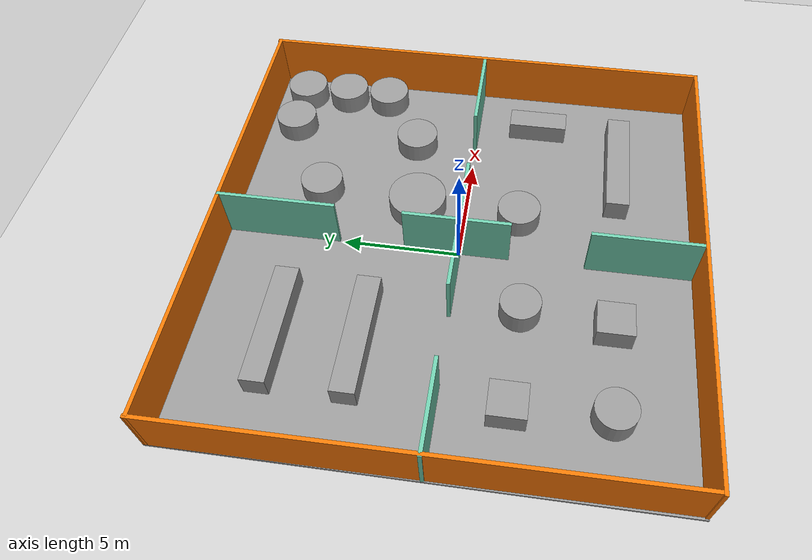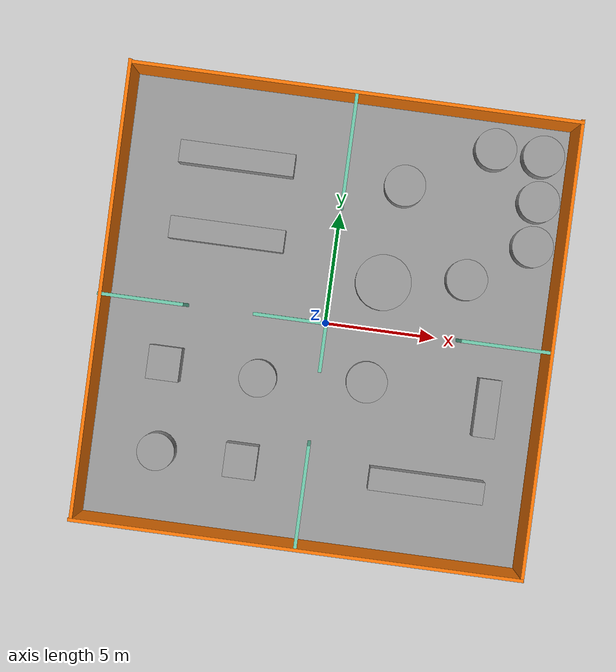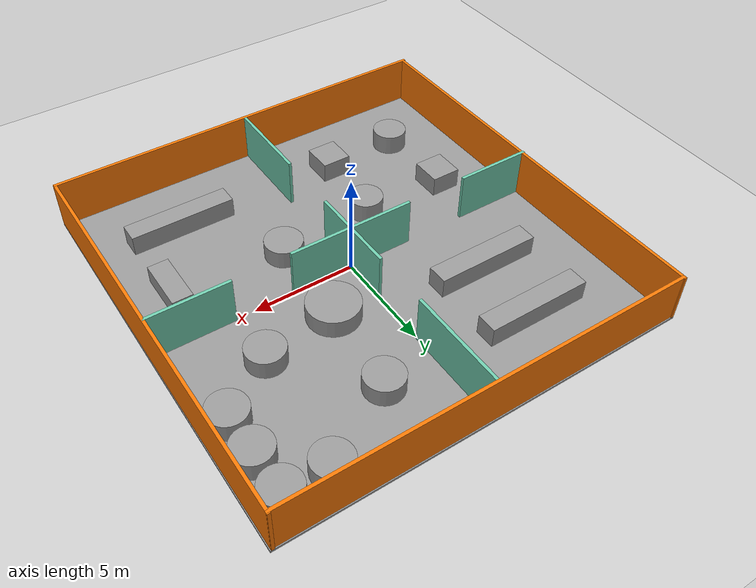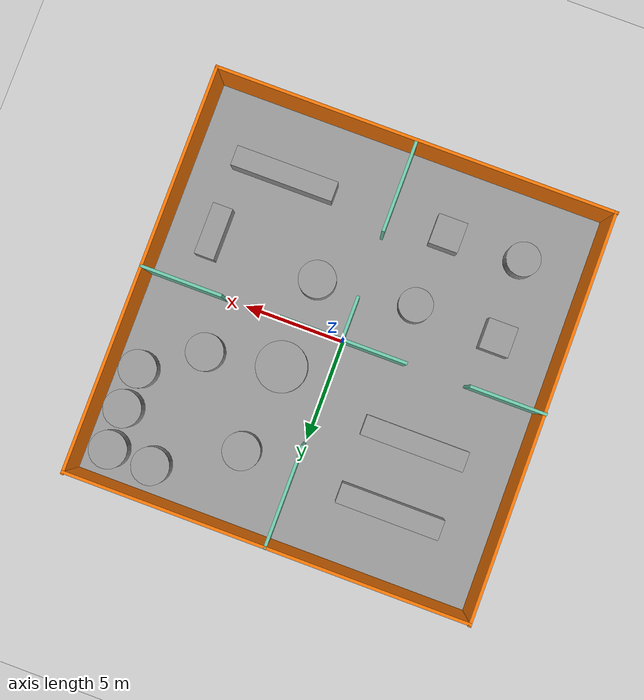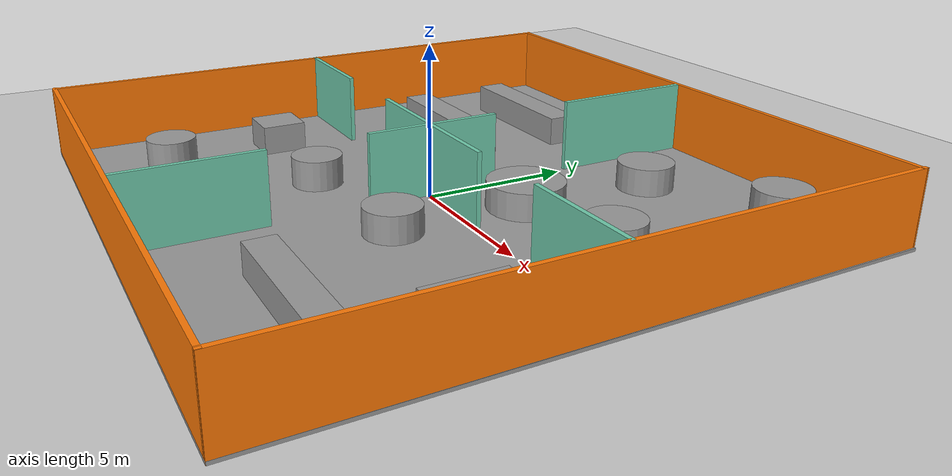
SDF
<sdf version="1.7">
 <world name="default">
  <plugin name="gazebo_ros_state" filename="libgazebo_ros_state.so">
   <ros><namespace>/gazebo</namespace></ros>
   <update_rate>20</update_rate>
  </plugin>
  <light name="sun" type="directional">
   <pose>0 0 10 0 -0 0</pose>
   <diffuse>0.8 0.8 0.8 1</diffuse>
   <specular>0.2 0.2 0.2 1</specular>
   <attenuation>
    <range>1000</range>
    <constant>0.9</constant>
    <linear>0.01</linear>
    <quadratic>0.001</quadratic>
   </attenuation>
   <direction>-0.5 0.1 -0.9</direction>
   <spot><inner_angle>0</inner_angle><outer_angle>0</outer_angle><falloff>0</falloff></spot>
  </light>
  <model name="ground_plane">
   <static>1</static>
   <link name="link">
    <collision name="collision">
     <geometry><plane><normal>0 0 1</normal><size>100 100</size></plane></geometry>
     <surface><friction><ode><mu>100</mu><mu2>50</mu2></ode></friction></surface>
    </collision>
    <visual name="visual">
     <cast_shadows>0</cast_shadows>
     <geometry><plane><normal>0 0 1</normal><size>100 100</size></plane></geometry>
     <material>
      <script><uri>file://media/materials/scripts/gazebo.material</uri><name>Gazebo/Grey</name></script>
     </material>
    </visual>
   </link>
  </model>
  <gravity>0 0 -9.8</gravity>
  <magnetic_field>6e-06 2.3e-05 -4.2e-05</magnetic_field>
  <atmosphere type="adiabatic"/>
  <physics type="ode">
   <max_step_size>0.001</max_step_size>
   <real_time_factor>1</real_time_factor>
   <real_time_update_rate>1000</real_time_update_rate>
  </physics>
  <scene><ambient>0.4 0.4 0.4 1</ambient><background>0.7 0.7 0.7 1</background><shadows>1</shadows></scene>
  <audio><device>default</device></audio>
  <spherical_coordinates>
   <surface_model>EARTH_WGS84</surface_model>
   <latitude_deg>0</latitude_deg>
   <longitude_deg>0</longitude_deg>
   <elevation>0</elevation>
   <heading_deg>0</heading_deg>
  </spherical_coordinates>
  <model name="unit_box">
   <pose>-4.87008 6.75774 0.599997 -5e-06 -0 9.3e-05</pose>
   <link name="link">
    <inertial>
     <mass>1</mass>
     <inertia>
      <ixx>0.166667</ixx>
      <ixy>0</ixy>
      <ixz>0</ixz>
      <iyy>0.166667</iyy>
      <iyz>0</iyz>
      <izz>0.166667</izz>
     </inertia>
    </inertial>
    <collision name="collision"><geometry><box><size>5.1529 1 1</size></box></geometry></collision>
    <visual name="visual">
     <geometry><box><size>5.1529 1 1</size></box></geometry>
     <material>
      <script><name>Gazebo/Grey</name><uri>file://media/materials/scripts/gazebo.material</uri></script>
     </material>
    </visual>
   </link>
   <static>1</static>
  </model>
  <model name="unit_box_clone">
   <pose>-4.86856 3.35458 0.6 -2e-06 0 9.4e-05</pose>
   <link name="link">
    <inertial>
     <mass>1</mass>
     <inertia>
      <ixx>0.166667</ixx>
      <ixy>0</ixy>
      <ixz>0</ixz>
      <iyy>0.166667</iyy>
      <iyz>0</iyz>
      <izz>0.166667</izz>
     </inertia>
    </inertial>
    <collision name="collision"><geometry><box><size>5.1529 1 1</size></box></geometry></collision>
    <visual name="visual">
     <geometry><box><size>5.1529 1 1</size></box></geometry>
     <material>
      <script><name>Gazebo/Grey</name><uri>file://media/materials/scripts/gazebo.material</uri></script>
     </material>
    </visual>
   </link>
   <static>1</static>
  </model>
  <model name="unit_cylinder">
   <pose>-2.65595 -2.8222 0.599999 2e-06 -0 -9e-06</pose>
   <link name="link">
    <inertial>
     <mass>1</mass>
     <inertia><ixx>0.145833</ixx><ixy>0</ixy><ixz>0</ixz><iyy>0.145833</iyy><iyz>0</iyz><izz>0.125</izz></inertia>
    </inertial>
    <collision name="collision">
     <geometry><cylinder><radius>0.843925</radius><length>1</length></cylinder></geometry>
    </collision>
    <visual name="visual">
     <geometry><cylinder><radius>0.843925</radius><length>1</length></cylinder></geometry>
     <material>
      <script><name>Gazebo/Grey</name><uri>file://media/materials/scripts/gazebo.material</uri></script>
     </material>
    </visual>
   </link>
   <static>1</static>
  </model>
  <model name="unit_cylinder_clone">
   <pose>-6.71343 -6.65789 0.6 0 -0 9e-06</pose>
   <link name="link">
    <inertial>
     <mass>1</mass>
     <inertia><ixx>0.145833</ixx><ixy>0</ixy><ixz>0</ixz><iyy>0.145833</iyy><iyz>0</iyz><izz>0.125</izz></inertia>
    </inertial>
    <collision name="collision">
     <geometry><cylinder><radius>0.843927</radius><length>1</length></cylinder></geometry>
    </collision>
    <visual name="visual">
     <geometry><cylinder><radius>0.843927</radius><length>1</length></cylinder></geometry>
     <material>
      <script><name>Gazebo/Grey</name><uri>file://media/materials/scripts/gazebo.material</uri></script>
     </material>
    </visual>
   </link>
   <static>1</static>
  </model>
  <model name="unit_box_0">
   <pose>-6.87616 -2.71698 0.599993 -9e-06 -0 3e-06</pose>
   <link name="link">
    <inertial>
     <mass>1</mass>
     <inertia>
      <ixx>0.166667</ixx>
      <ixy>0</ixy>
      <ixz>0</ixz>
      <iyy>0.166667</iyy>
      <iyz>0</iyz>
      <izz>0.166667</izz>
     </inertia>
    </inertial>
    <collision name="collision"><geometry><box><size>1.45937 1.51944 1</size></box></geometry></collision>
    <visual name="visual">
     <geometry><box><size>1.45937 1.51944 1</size></box></geometry>
     <material>
      <script><name>Gazebo/Grey</name><uri>file://media/materials/scripts/gazebo.material</uri></script>
     </material>
    </visual>
   </link>
   <static>1</static>
  </model>
  <model name="unit_box_0_clone">
   <pose>-2.92496 -6.5854 0.599993 -9e-06 -0 3e-06</pose>
   <link name="link">
    <inertial>
     <mass>1</mass>
     <inertia>
      <ixx>0.166667</ixx>
      <ixy>0</ixy>
      <ixz>0</ixz>
      <iyy>0.166667</iyy>
      <iyz>0</iyz>
      <izz>0.166667</izz>
     </inertia>
    </inertial>
    <collision name="collision"><geometry><box><size>1.45937 1.51944 1</size></box></geometry></collision>
    <visual name="visual">
     <geometry><box><size>1.45937 1.51944 1</size></box></geometry>
     <material>
      <script><name>Gazebo/Grey</name><uri>file://media/materials/scripts/gazebo.material</uri></script>
     </material>
    </visual>
   </link>
   <static>1</static>
  </model>
  <model name="four_rooms">
   <static>1</static>
   <link name="Floor_0">
    <visual name="Floor_0_Visual">
     <pose>0 0 0.05 0 -0 0</pose>
     <geometry><box><size>19.9831 20.2277 0.1</size></box></geometry>
     <material>
      <script><uri>file://media/materials/scripts/gazebo.material</uri><name>Gazebo/Grey</name></script>
      <ambient>1 1 1 1</ambient>
      <shader type="pixel"/>
     </material>
     <meta><layer>0</layer></meta>
    </visual>
    <collision name="Floor_0_Collision">
     <pose>0 0 0.05 0 -0 0</pose>
     <geometry><box><size>19.9831 20.2277 0.1</size></box></geometry>
     <surface>
      <friction>
       <ode><mu>1</mu><mu2>1</mu2><fdir1>0 0 0</fdir1><slip1>0</slip1><slip2>0</slip2></ode>
       <torsional>
        <coefficient>1</coefficient>
        <patch_radius>0</patch_radius>
        <surface_radius>0</surface_radius>
        <use_patch_radius>1</use_patch_radius>
        <ode><slip>0</slip></ode>
       </torsional>
      </friction>
      <bounce><restitution_coefficient>0</restitution_coefficient><threshold>1e+06</threshold></bounce>
      <contact>
       <collide_without_contact>0</collide_without_contact>
       <collide_without_contact_bitmask>1</collide_without_contact_bitmask>
       <collide_bitmask>1</collide_bitmask>
       <ode>
        <soft_cfm>0</soft_cfm>
        <soft_erp>0.2</soft_erp>
        <kp>1e+13</kp>
        <kd>1</kd>
        <max_vel>0.01</max_vel>
        <min_depth>0</min_depth>
       </ode>
       <bullet>
        <split_impulse>1</split_impulse>
        <split_impulse_penetration_threshold>-0.01</split_impulse_penetration_threshold>
        <soft_cfm>0</soft_cfm>
        <soft_erp>0.2</soft_erp>
        <kp>1e+13</kp>
        <kd>1</kd>
       </bullet>
      </contact>
     </surface>
    </collision>
   </link>
   <link name="Wall_13">
    <pose>0.014659 -10.0385 0 0 -0 3.14159</pose>
    <visual name="Wall_13_Visual">
     <pose>0 0 1.25 0 -0 0</pose>
     <geometry><box><size>19.9187 0.15 2.5</size></box></geometry>
     <material>
      <script><uri>file://media/materials/scripts/gazebo.material</uri><name>Gazebo/Grey</name></script>
      <ambient>0.996078 0.47451 0.0196078 1</ambient>
      <shader type="pixel"/>
     </material>
     <meta><layer>0</layer></meta>
    </visual>
    <collision name="Wall_13_Collision">
     <pose>0 0 1.25 0 -0 0</pose>
     <geometry><box><size>19.9187 0.15 2.5</size></box></geometry>
     <surface>
      <friction>
       <ode><mu>1</mu><mu2>1</mu2><fdir1>0 0 0</fdir1><slip1>0</slip1><slip2>0</slip2></ode>
       <torsional>
        <coefficient>1</coefficient>
        <patch_radius>0</patch_radius>
        <surface_radius>0</surface_radius>
        <use_patch_radius>1</use_patch_radius>
        <ode><slip>0</slip></ode>
       </torsional>
      </friction>
      <bounce><restitution_coefficient>0</restitution_coefficient><threshold>1e+06</threshold></bounce>
      <contact>
       <collide_without_contact>0</collide_without_contact>
       <collide_without_contact_bitmask>1</collide_without_contact_bitmask>
       <collide_bitmask>1</collide_bitmask>
       <ode>
        <soft_cfm>0</soft_cfm>
        <soft_erp>0.2</soft_erp>
        <kp>1e+13</kp>
        <kd>1</kd>
        <max_vel>0.01</max_vel>
        <min_depth>0</min_depth>
       </ode>
       <bullet>
        <split_impulse>1</split_impulse>
        <split_impulse_penetration_threshold>-0.01</split_impulse_penetration_threshold>
        <soft_cfm>0</soft_cfm>
        <soft_erp>0.2</soft_erp>
        <kp>1e+13</kp>
        <kd>1</kd>
       </bullet>
      </contact>
     </surface>
    </collision>
   </link>
   <link name="Wall_14">
    <pose>-9.8697 0 0 0 -0 1.57543</pose>
    <visual name="Wall_14_Visual">
     <pose>0 0 1.25 0 -0 0</pose>
     <geometry><box><size>20.2272 0.15 2.5</size></box></geometry>
     <material>
      <script><uri>file://media/materials/scripts/gazebo.material</uri><name>Gazebo/Grey</name></script>
      <ambient>0.996078 0.47451 0.0196078 1</ambient>
      <shader type="pixel"/>
     </material>
     <meta><layer>0</layer></meta>
    </visual>
    <collision name="Wall_14_Collision">
     <pose>0 0 1.25 0 -0 0</pose>
     <geometry><box><size>20.2272 0.15 2.5</size></box></geometry>
     <surface>
      <friction>
       <ode><mu>1</mu><mu2>1</mu2><fdir1>0 0 0</fdir1><slip1>0</slip1><slip2>0</slip2></ode>
       <torsional>
        <coefficient>1</coefficient>
        <patch_radius>0</patch_radius>
        <surface_radius>0</surface_radius>
        <use_patch_radius>1</use_patch_radius>
        <ode><slip>0</slip></ode>
       </torsional>
      </friction>
      <bounce><restitution_coefficient>0</restitution_coefficient><threshold>1e+06</threshold></bounce>
      <contact>
       <collide_without_contact>0</collide_without_contact>
       <collide_without_contact_bitmask>1</collide_without_contact_bitmask>
       <collide_bitmask>1</collide_bitmask>
       <ode>
        <soft_cfm>0</soft_cfm>
        <soft_erp>0.2</soft_erp>
        <kp>1e+13</kp>
        <kd>1</kd>
        <max_vel>0.01</max_vel>
        <min_depth>0</min_depth>
       </ode>
       <bullet>
        <split_impulse>1</split_impulse>
        <split_impulse_penetration_threshold>-0.01</split_impulse_penetration_threshold>
        <soft_cfm>0</soft_cfm>
        <soft_erp>0.2</soft_erp>
        <kp>1e+13</kp>
        <kd>1</kd>
       </bullet>
      </contact>
     </surface>
    </collision>
   </link>
   <link name="Wall_15">
    <pose>-0.023175 9.99198 0 0 -0 0</pose>
    <visual name="Wall_15_Visual">
     <pose>0 0 1.25 0 -0 0</pose>
     <geometry><box><size>19.9361 0.15 2.5</size></box></geometry>
     <material>
      <script><uri>file://media/materials/scripts/gazebo.material</uri><name>Gazebo/Grey</name></script>
      <ambient>0.996078 0.47451 0.0196078 1</ambient>
      <shader type="pixel"/>
     </material>
     <meta><layer>0</layer></meta>
    </visual>
    <collision name="Wall_15_Collision">
     <pose>0 0 1.25 0 -0 0</pose>
     <geometry><box><size>19.9361 0.15 2.5</size></box></geometry>
     <surface>
      <friction>
       <ode><mu>1</mu><mu2>1</mu2><fdir1>0 0 0</fdir1><slip1>0</slip1><slip2>0</slip2></ode>
       <torsional>
        <coefficient>1</coefficient>
        <patch_radius>0</patch_radius>
        <surface_radius>0</surface_radius>
        <use_patch_radius>1</use_patch_radius>
        <ode><slip>0</slip></ode>
       </torsional>
      </friction>
      <bounce><restitution_coefficient>0</restitution_coefficient><threshold>1e+06</threshold></bounce>
      <contact>
       <collide_without_contact>0</collide_without_contact>
       <collide_without_contact_bitmask>1</collide_without_contact_bitmask>
       <collide_bitmask>1</collide_bitmask>
       <ode>
        <soft_cfm>0</soft_cfm>
        <soft_erp>0.2</soft_erp>
        <kp>1e+13</kp>
        <kd>1</kd>
        <max_vel>0.01</max_vel>
        <min_depth>0</min_depth>
       </ode>
       <bullet>
        <split_impulse>1</split_impulse>
        <split_impulse_penetration_threshold>-0.01</split_impulse_penetration_threshold>
        <soft_cfm>0</soft_cfm>
        <soft_erp>0.2</soft_erp>
        <kp>1e+13</kp>
        <kd>1</kd>
       </bullet>
      </contact>
     </surface>
    </collision>
   </link>
   <link name="Wall_16">
    <pose>9.89314 0 0 0 0 -1.56848</pose>
    <visual name="Wall_16_Visual">
     <pose>0 0 1.25 0 -0 0</pose>
     <geometry><box><size>20.2271 0.15 2.5</size></box></geometry>
     <material>
      <script><uri>file://media/materials/scripts/gazebo.material</uri><name>Gazebo/Grey</name></script>
      <ambient>0.996078 0.47451 0.0196078 1</ambient>
      <shader type="pixel"/>
     </material>
     <meta><layer>0</layer></meta>
    </visual>
    <collision name="Wall_16_Collision">
     <pose>0 0 1.25 0 -0 0</pose>
     <geometry><box><size>20.2271 0.15 2.5</size></box></geometry>
     <surface>
      <friction>
       <ode><mu>1</mu><mu2>1</mu2><fdir1>0 0 0</fdir1><slip1>0</slip1><slip2>0</slip2></ode>
       <torsional>
        <coefficient>1</coefficient>
        <patch_radius>0</patch_radius>
        <surface_radius>0</surface_radius>
        <use_patch_radius>1</use_patch_radius>
        <ode><slip>0</slip></ode>
       </torsional>
      </friction>
      <bounce><restitution_coefficient>0</restitution_coefficient><threshold>1e+06</threshold></bounce>
      <contact>
       <collide_without_contact>0</collide_without_contact>
       <collide_without_contact_bitmask>1</collide_without_contact_bitmask>
       <collide_bitmask>1</collide_bitmask>
       <ode>
        <soft_cfm>0</soft_cfm>
        <soft_erp>0.2</soft_erp>
        <kp>1e+13</kp>
        <kd>1</kd>
        <max_vel>0.01</max_vel>
        <min_depth>0</min_depth>
       </ode>
       <bullet>
        <split_impulse>1</split_impulse>
        <split_impulse_penetration_threshold>-0.01</split_impulse_penetration_threshold>
        <soft_cfm>0</soft_cfm>
        <soft_erp>0.2</soft_erp>
        <kp>1e+13</kp>
        <kd>1</kd>
       </bullet>
      </contact>
     </surface>
    </collision>
   </link>
   <link name="Wall_17">
    <pose>-0.020792 -7.72221 0 0 -0 1.5708</pose>
    <visual name="Wall_17_Visual">
     <pose>0 0 1.25 0 -0 0</pose>
     <geometry><box><size>4.5 0.15 2.5</size></box></geometry>
     <material>
      <script><uri>file://media/materials/scripts/gazebo.material</uri><name>Gazebo/Grey</name></script>
      <ambient>0.435294 0.796078 0.67451 1</ambient>
      <shader type="pixel"/>
     </material>
     <meta><layer>0</layer></meta>
    </visual>
    <collision name="Wall_17_Collision">
     <pose>0 0 1.25 0 -0 0</pose>
     <geometry><box><size>4.5 0.15 2.5</size></box></geometry>
     <surface>
      <friction>
       <ode><mu>1</mu><mu2>1</mu2><fdir1>0 0 0</fdir1><slip1>0</slip1><slip2>0</slip2></ode>
       <torsional>
        <coefficient>1</coefficient>
        <patch_radius>0</patch_radius>
        <surface_radius>0</surface_radius>
        <use_patch_radius>1</use_patch_radius>
        <ode><slip>0</slip></ode>
       </torsional>
      </friction>
      <bounce><restitution_coefficient>0</restitution_coefficient><threshold>1e+06</threshold></bounce>
      <contact>
       <collide_without_contact>0</collide_without_contact>
       <collide_without_contact_bitmask>1</collide_without_contact_bitmask>
       <collide_bitmask>1</collide_bitmask>
       <ode>
        <soft_cfm>0</soft_cfm>
        <soft_erp>0.2</soft_erp>
        <kp>1e+13</kp>
        <kd>1</kd>
        <max_vel>0.01</max_vel>
        <min_depth>0</min_depth>
       </ode>
       <bullet>
        <split_impulse>1</split_impulse>
        <split_impulse_penetration_threshold>-0.01</split_impulse_penetration_threshold>
        <soft_cfm>0</soft_cfm>
        <soft_erp>0.2</soft_erp>
        <kp>1e+13</kp>
        <kd>1</kd>
       </bullet>
      </contact>
     </surface>
    </collision>
   </link>
   <link name="Wall_42">
    <pose>0.014279 -0.015042 0 0 -0 1.5708</pose>
    <visual name="Wall_42_Visual">
     <pose>0 0 1.25 0 -0 0</pose>
     <geometry><box><size>4.5 0.15 2.5</size></box></geometry>
     <material>
      <script><uri>file://media/materials/scripts/gazebo.material</uri><name>Gazebo/Grey</name></script>
      <ambient>0.435294 0.796078 0.67451 1</ambient>
      <shader type="pixel"/>
     </material>
     <meta><layer>0</layer></meta>
    </visual>
    <collision name="Wall_42_Collision">
     <pose>0 0 1.25 0 -0 0</pose>
     <geometry><box><size>4.5 0.15 2.5</size></box></geometry>
     <surface>
      <friction>
       <ode><mu>1</mu><mu2>1</mu2><fdir1>0 0 0</fdir1><slip1>0</slip1><slip2>0</slip2></ode>
       <torsional>
        <coefficient>1</coefficient>
        <patch_radius>0</patch_radius>
        <surface_radius>0</surface_radius>
        <use_patch_radius>1</use_patch_radius>
        <ode><slip>0</slip></ode>
       </torsional>
      </friction>
      <bounce><restitution_coefficient>0</restitution_coefficient><threshold>1e+06</threshold></bounce>
      <contact>
       <collide_without_contact>0</collide_without_contact>
       <collide_without_contact_bitmask>1</collide_without_contact_bitmask>
       <collide_bitmask>1</collide_bitmask>
       <ode>
        <soft_cfm>0</soft_cfm>
        <soft_erp>0.2</soft_erp>
        <kp>1e+13</kp>
        <kd>1</kd>
        <max_vel>0.01</max_vel>
        <min_depth>0</min_depth>
       </ode>
       <bullet>
        <split_impulse>1</split_impulse>
        <split_impulse_penetration_threshold>-0.01</split_impulse_penetration_threshold>
        <soft_cfm>0</soft_cfm>
        <soft_erp>0.2</soft_erp>
        <kp>1e+13</kp>
        <kd>1</kd>
       </bullet>
      </contact>
     </surface>
    </collision>
   </link>
   <link name="Wall_44">
    <pose>-0.052794 -0.127916 0 0 -0 0</pose>
    <visual name="Wall_44_Visual">
     <pose>0 0 1.25 0 -0 0</pose>
     <geometry><box><size>6.25 0.15 2.5</size></box></geometry>
     <material>
      <script><uri>file://media/materials/scripts/gazebo.material</uri><name>Gazebo/Grey</name></script>
      <ambient>0.435294 0.796078 0.67451 1</ambient>
      <shader type="pixel"/>
     </material>
     <meta><layer>0</layer></meta>
    </visual>
    <collision name="Wall_44_Collision">
     <pose>0 0 1.25 0 -0 0</pose>
     <geometry><box><size>6.25 0.15 2.5</size></box></geometry>
     <surface>
      <friction>
       <ode><mu>1</mu><mu2>1</mu2><fdir1>0 0 0</fdir1><slip1>0</slip1><slip2>0</slip2></ode>
       <torsional>
        <coefficient>1</coefficient>
        <patch_radius>0</patch_radius>
        <surface_radius>0</surface_radius>
        <use_patch_radius>1</use_patch_radius>
        <ode><slip>0</slip></ode>
       </torsional>
      </friction>
      <bounce><restitution_coefficient>0</restitution_coefficient><threshold>1e+06</threshold></bounce>
      <contact>
       <collide_without_contact>0</collide_without_contact>
       <collide_without_contact_bitmask>1</collide_without_contact_bitmask>
       <collide_bitmask>1</collide_bitmask>
       <ode>
        <soft_cfm>0</soft_cfm>
        <soft_erp>0.2</soft_erp>
        <kp>1e+13</kp>
        <kd>1</kd>
        <max_vel>0.01</max_vel>
        <min_depth>0</min_depth>
       </ode>
       <bullet>
        <split_impulse>1</split_impulse>
        <split_impulse_penetration_threshold>-0.01</split_impulse_penetration_threshold>
        <soft_cfm>0</soft_cfm>
        <soft_erp>0.2</soft_erp>
        <kp>1e+13</kp>
        <kd>1</kd>
       </bullet>
      </contact>
     </surface>
    </collision>
   </link>
   <link name="Wall_46">
    <pose>0.015303 7.5426 0 0 0 -1.5708</pose>
    <visual name="Wall_46_Visual">
     <pose>0 0 1.25 0 -0 0</pose>
     <geometry><box><size>5 0.15 2.5</size></box></geometry>
     <material>
      <script><uri>file://media/materials/scripts/gazebo.material</uri><name>Gazebo/Grey</name></script>
      <ambient>0.435294 0.796078 0.67451 1</ambient>
      <shader type="pixel"/>
     </material>
     <meta><layer>0</layer></meta>
    </visual>
    <collision name="Wall_46_Collision">
     <pose>0 0 1.25 0 -0 0</pose>
     <geometry><box><size>5 0.15 2.5</size></box></geometry>
     <surface>
      <friction>
       <ode><mu>1</mu><mu2>1</mu2><fdir1>0 0 0</fdir1><slip1>0</slip1><slip2>0</slip2></ode>
       <torsional>
        <coefficient>1</coefficient>
        <patch_radius>0</patch_radius>
        <surface_radius>0</surface_radius>
        <use_patch_radius>1</use_patch_radius>
        <ode><slip>0</slip></ode>
       </torsional>
      </friction>
      <bounce><restitution_coefficient>0</restitution_coefficient><threshold>1e+06</threshold></bounce>
      <contact>
       <collide_without_contact>0</collide_without_contact>
       <collide_without_contact_bitmask>1</collide_without_contact_bitmask>
       <collide_bitmask>1</collide_bitmask>
       <ode>
        <soft_cfm>0</soft_cfm>
        <soft_erp>0.2</soft_erp>
        <kp>1e+13</kp>
        <kd>1</kd>
        <max_vel>0.01</max_vel>
        <min_depth>0</min_depth>
       </ode>
       <bullet>
        <split_impulse>1</split_impulse>
        <split_impulse_penetration_threshold>-0.01</split_impulse_penetration_threshold>
        <soft_cfm>0</soft_cfm>
        <soft_erp>0.2</soft_erp>
        <kp>1e+13</kp>
        <kd>1</kd>
       </bullet>
      </contact>
     </surface>
    </collision>
   </link>
   <link name="Wall_48">
    <pose>-8.10837 -0.144009 0 0 -0 0</pose>
    <visual name="Wall_48_Visual">
     <pose>0 0 1.25 0 -0 0</pose>
     <geometry><box><size>3.75 0.15 2.5</size></box></geometry>
     <material>
      <script><uri>file://media/materials/scripts/gazebo.material</uri><name>Gazebo/Grey</name></script>
      <ambient>0.435294 0.796078 0.67451 1</ambient>
      <shader type="pixel"/>
     </material>
     <meta><layer>0</layer></meta>
    </visual>
    <collision name="Wall_48_Collision">
     <pose>0 0 1.25 0 -0 0</pose>
     <geometry><box><size>3.75 0.15 2.5</size></box></geometry>
     <surface>
      <friction>
       <ode><mu>1</mu><mu2>1</mu2><fdir1>0 0 0</fdir1><slip1>0</slip1><slip2>0</slip2></ode>
       <torsional>
        <coefficient>1</coefficient>
        <patch_radius>0</patch_radius>
        <surface_radius>0</surface_radius>
        <use_patch_radius>1</use_patch_radius>
        <ode><slip>0</slip></ode>
       </torsional>
      </friction>
      <bounce><restitution_coefficient>0</restitution_coefficient><threshold>1e+06</threshold></bounce>
      <contact>
       <collide_without_contact>0</collide_without_contact>
       <collide_without_contact_bitmask>1</collide_without_contact_bitmask>
       <collide_bitmask>1</collide_bitmask>
       <ode>
        <soft_cfm>0</soft_cfm>
        <soft_erp>0.2</soft_erp>
        <kp>1e+13</kp>
        <kd>1</kd>
        <max_vel>0.01</max_vel>
        <min_depth>0</min_depth>
       </ode>
       <bullet>
        <split_impulse>1</split_impulse>
        <split_impulse_penetration_threshold>-0.01</split_impulse_penetration_threshold>
        <soft_cfm>0</soft_cfm>
        <soft_erp>0.2</soft_erp>
        <kp>1e+13</kp>
        <kd>1</kd>
       </bullet>
      </contact>
     </surface>
    </collision>
   </link>
   <link name="Wall_50">
    <pose>7.9212 -0.090941 0 0 -0 0</pose>
    <visual name="Wall_50_Visual">
     <pose>0 0 1.25 0 -0 0</pose>
     <geometry><box><size>4 0.15 2.5</size></box></geometry>
     <material>
      <script><uri>file://media/materials/scripts/gazebo.material</uri><name>Gazebo/Grey</name></script>
      <ambient>0.435294 0.796078 0.67451 1</ambient>
      <shader type="pixel"/>
     </material>
     <meta><layer>0</layer></meta>
    </visual>
    <collision name="Wall_50_Collision">
     <pose>0 0 1.25 0 -0 0</pose>
     <geometry><box><size>4 0.15 2.5</size></box></geometry>
     <surface>
      <friction>
       <ode><mu>1</mu><mu2>1</mu2><fdir1>0 0 0</fdir1><slip1>0</slip1><slip2>0</slip2></ode>
       <torsional>
        <coefficient>1</coefficient>
        <patch_radius>0</patch_radius>
        <surface_radius>0</surface_radius>
        <use_patch_radius>1</use_patch_radius>
        <ode><slip>0</slip></ode>
       </torsional>
      </friction>
      <bounce><restitution_coefficient>0</restitution_coefficient><threshold>1e+06</threshold></bounce>
      <contact>
       <collide_without_contact>0</collide_without_contact>
       <collide_without_contact_bitmask>1</collide_without_contact_bitmask>
       <collide_bitmask>1</collide_bitmask>
       <ode>
        <soft_cfm>0</soft_cfm>
        <soft_erp>0.2</soft_erp>
        <kp>1e+13</kp>
        <kd>1</kd>
        <max_vel>0.01</max_vel>
        <min_depth>0</min_depth>
       </ode>
       <bullet>
        <split_impulse>1</split_impulse>
        <split_impulse_penetration_threshold>-0.01</split_impulse_penetration_threshold>
        <soft_cfm>0</soft_cfm>
        <soft_erp>0.2</soft_erp>
        <kp>1e+13</kp>
        <kd>1</kd>
       </bullet>
      </contact>
     </surface>
    </collision>
   </link>
   <static>1</static>
   <pose>0.020363 0.131257 0 0 -0 0</pose>
  </model>
  <model name="unit_cylinder_0">
   <pose>8.63978 8.67282 0.5 0 -0 0</pose>
   <link name="link">
    <inertial>
     <mass>1</mass>
     <inertia><ixx>0.145833</ixx><ixy>0</ixy><ixz>0</ixz><iyy>0.145833</iyy><iyz>0</iyz><izz>0.125</izz></inertia>
    </inertial>
    <collision name="collision">
     <geometry><cylinder><radius>0.92751</radius><length>1</length></cylinder></geometry>
    </collision>
    <visual name="visual">
     <geometry><cylinder><radius>0.92751</radius><length>1</length></cylinder></geometry>
     <material>
      <script><name>Gazebo/Grey</name><uri>file://media/materials/scripts/gazebo.material</uri></script>
     </material>
    </visual>
   </link>
   <static>1</static>
  </model>
  <model name="unit_cylinder_0_clone">
   <pose>8.70181 6.63239 0.5 0 -0 0</pose>
   <link name="link">
    <inertial>
     <mass>1</mass>
     <inertia><ixx>0.145833</ixx><ixy>0</ixy><ixz>0</ixz><iyy>0.145833</iyy><iyz>0</iyz><izz>0.125</izz></inertia>
    </inertial>
    <collision name="collision">
     <geometry><cylinder><radius>0.927512</radius><length>1</length></cylinder></geometry>
    </collision>
    <visual name="visual">
     <geometry><cylinder><radius>0.927512</radius><length>1</length></cylinder></geometry>
     <material>
      <script><name>Gazebo/Grey</name><uri>file://media/materials/scripts/gazebo.material</uri></script>
     </material>
    </visual>
   </link>
   <static>1</static>
  </model>
  <model name="unit_cylinder_0_clone_0">
   <pose>8.68759 4.61588 0.5 0 -0 0</pose>
   <link name="link">
    <inertial>
     <mass>1</mass>
     <inertia><ixx>0.145833</ixx><ixy>0</ixy><ixz>0</ixz><iyy>0.145833</iyy><iyz>0</iyz><izz>0.125</izz></inertia>
    </inertial>
    <collision name="collision">
     <geometry><cylinder><radius>0.927512</radius><length>1</length></cylinder></geometry>
    </collision>
    <visual name="visual">
     <geometry><cylinder><radius>0.927512</radius><length>1</length></cylinder></geometry>
     <material>
      <script><name>Gazebo/Grey</name><uri>file://media/materials/scripts/gazebo.material</uri></script>
     </material>
    </visual>
   </link>
   <static>1</static>
  </model>
  <model name="unit_cylinder_0_clone_1">
   <pose>6.48849 8.70381 0.5 0 -0 0</pose>
   <link name="link">
    <inertial>
     <mass>1</mass>
     <inertia><ixx>0.145833</ixx><ixy>0</ixy><ixz>0</ixz><iyy>0.145833</iyy><iyz>0</iyz><izz>0.125</izz></inertia>
    </inertial>
    <collision name="collision">
     <geometry><cylinder><radius>0.927512</radius><length>1</length></cylinder></geometry>
    </collision>
    <visual name="visual">
     <geometry><cylinder><radius>0.927512</radius><length>1</length></cylinder></geometry>
     <material>
      <script><name>Gazebo/Grey</name><uri>file://media/materials/scripts/gazebo.material</uri></script>
     </material>
    </visual>
   </link>
   <static>1</static>
  </model>
  <model name="unit_cylinder_0_clone_2">
   <pose>2.69872 6.55598 0.5 0 -0 0</pose>
   <link name="link">
    <inertial>
     <mass>1</mass>
     <inertia><ixx>0.145833</ixx><ixy>0</ixy><ixz>0</ixz><iyy>0.145833</iyy><iyz>0</iyz><izz>0.125</izz></inertia>
    </inertial>
    <collision name="collision">
     <geometry><cylinder><radius>0.927512</radius><length>1</length></cylinder></geometry>
    </collision>
    <visual name="visual">
     <geometry><cylinder><radius>0.927512</radius><length>1</length></cylinder></geometry>
     <material>
      <script><name>Gazebo/Grey</name><uri>file://media/materials/scripts/gazebo.material</uri></script>
     </material>
    </visual>
   </link>
   <static>1</static>
  </model>
  <model name="unit_cylinder_0_clone_3">
   <pose>5.98632 2.76045 0.5 0 -0 0</pose>
   <link name="link">
    <inertial>
     <mass>1</mass>
     <inertia><ixx>0.145833</ixx><ixy>0</ixy><ixz>0</ixz><iyy>0.145833</iyy><iyz>0</iyz><izz>0.125</izz></inertia>
    </inertial>
    <collision name="collision">
     <geometry><cylinder><radius>0.927512</radius><length>1</length></cylinder></geometry>
    </collision>
    <visual name="visual">
     <geometry><cylinder><radius>0.927512</radius><length>1</length></cylinder></geometry>
     <material>
      <script><name>Gazebo/Grey</name><uri>file://media/materials/scripts/gazebo.material</uri></script>
     </material>
    </visual>
   </link>
   <static>1</static>
  </model>
  <model name="unit_cylinder_0_clone_4">
   <pose>2.31478 2.15143 0.5 0 -0 0</pose>
   <link name="link">
    <inertial>
     <mass>1</mass>
     <inertia><ixx>0.145833</ixx><ixy>0</ixy><ixz>0</ixz><iyy>0.145833</iyy><iyz>0</iyz><izz>0.125</izz></inertia>
    </inertial>
    <collision name="collision">
     <geometry><cylinder><radius>1.25416</radius><length>1</length></cylinder></geometry>
    </collision>
    <visual name="visual">
     <geometry><cylinder><radius>1.25416</radius><length>1</length></cylinder></geometry>
     <material>
      <script><name>Gazebo/Grey</name><uri>file://media/materials/scripts/gazebo.material</uri></script>
     </material>
    </visual>
   </link>
   <static>1</static>
  </model>
  <model name="unit_cylinder_0_clone_5">
   <pose>2.17595 -2.35332 0.5 0 -0 0</pose>
   <link name="link">
    <inertial>
     <mass>1</mass>
     <inertia><ixx>0.145833</ixx><ixy>0</ixy><ixz>0</ixz><iyy>0.145833</iyy><iyz>0</iyz><izz>0.125</izz></inertia>
    </inertial>
    <collision name="collision">
     <geometry><cylinder><radius>0.927512</radius><length>1</length></cylinder></geometry>
    </collision>
    <visual name="visual">
     <geometry><cylinder><radius>0.927512</radius><length>1</length></cylinder></geometry>
     <material>
      <script><name>Gazebo/Grey</name><uri>file://media/materials/scripts/gazebo.material</uri></script>
     </material>
    </visual>
   </link>
   <static>1</static>
  </model>
  <model name="unit_box_clone_clone">
   <pose>5.41633 -6.56919 0.6 -2e-06 0 9.4e-05</pose>
   <link name="link">
    <inertial>
     <mass>1</mass>
     <inertia>
      <ixx>0.166667</ixx>
      <ixy>0</ixy>
      <ixz>0</ixz>
      <iyy>0.166667</iyy>
      <iyz>0</iyz>
      <izz>0.166667</izz>
     </inertia>
    </inertial>
    <collision name="collision"><geometry><box><size>5.1529 1 1</size></box></geometry></collision>
    <visual name="visual">
     <geometry><box><size>5.1529 1 1</size></box></geometry>
     <material>
      <script><name>Gazebo/Grey</name><uri>file://media/materials/scripts/gazebo.material</uri></script>
     </material>
    </visual>
   </link>
   <static>1</static>
  </model>
  <model name="unit_box_1">
   <pose>7.64071 -2.79348 0.5 0 -0 0</pose>
   <link name="link">
    <inertial>
     <mass>1</mass>
     <inertia>
      <ixx>0.166667</ixx>
      <ixy>0</ixy>
      <ixz>0</ixz>
      <iyy>0.166667</iyy>
      <iyz>0</iyz>
      <izz>0.166667</izz>
     </inertia>
    </inertial>
    <collision name="collision"><geometry><box><size>1 2.61019 1</size></box></geometry></collision>
    <visual name="visual">
     <geometry><box><size>1 2.61019 1</size></box></geometry>
     <material>
      <script><name>Gazebo/Grey</name><uri>file://media/materials/scripts/gazebo.material</uri></script>
     </material>
    </visual>
   </link>
   <static>1</static>
  </model>
 </world>
</sdf>
